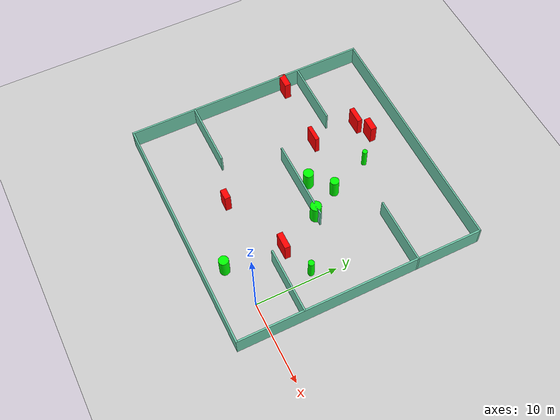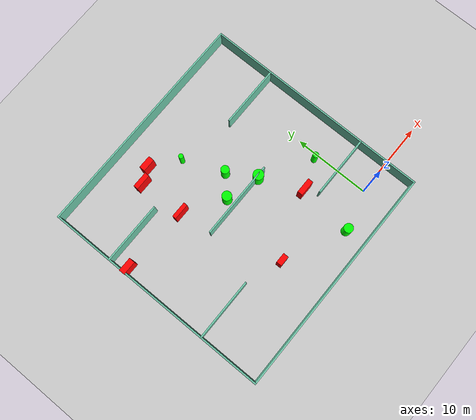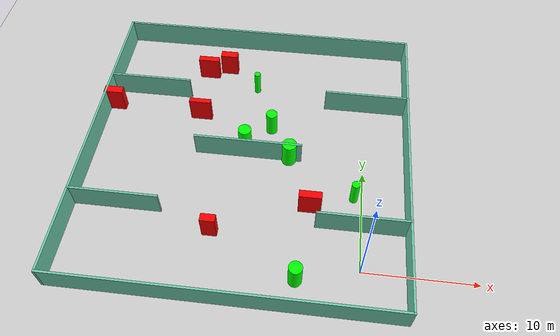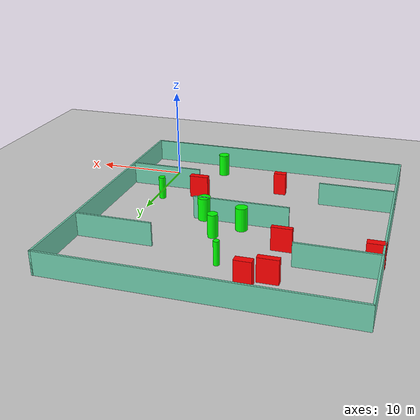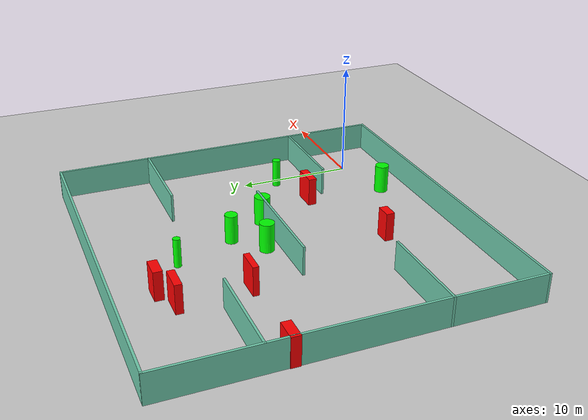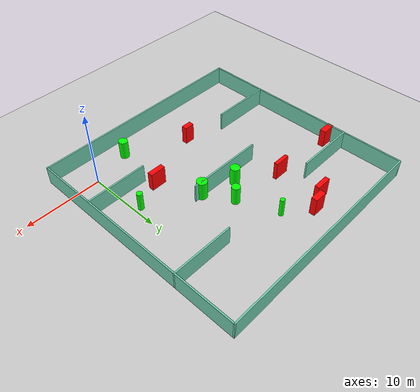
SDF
<sdf version="1.7">
 <world name="default">
  <light name="sun" type="directional">
   <pose>0 0 10 0 -0 0</pose>
   <diffuse>0.8 0.8 0.8 1</diffuse>
   <specular>0.2 0.2 0.2 1</specular>
   <attenuation>
    <range>1000</range>
    <constant>0.9</constant>
    <linear>0.01</linear>
    <quadratic>0.001</quadratic>
   </attenuation>
   <direction>-0.5 0.1 -0.9</direction>
   <spot><inner_angle>0</inner_angle><outer_angle>0</outer_angle><falloff>0</falloff></spot>
  </light>
  <model name="ground_plane">
   <static>1</static>
   <link name="link">
    <collision name="collision">
     <geometry><plane><normal>0 0 1</normal><size>100 100</size></plane></geometry>
     <surface>
      <contact><collide_bitmask>65535</collide_bitmask></contact>
      <friction><ode><mu>100</mu><mu2>50</mu2></ode></friction>
     </surface>
    </collision>
    <visual name="visual">
     <cast_shadows>0</cast_shadows>
     <geometry><plane><normal>0 0 1</normal><size>100 100</size></plane></geometry>
     <material>
      <script><uri>file://media/materials/scripts/gazebo.material</uri><name>Gazebo/Grey</name></script>
     </material>
    </visual>
   </link>
  </model>
  <gravity>0 0 -9.8</gravity>
  <magnetic_field>6e-06 2.3e-05 -4.2e-05</magnetic_field>
  <atmosphere type="adiabatic"/>
  <physics type="ode">
   <max_step_size>0.001</max_step_size>
   <real_time_factor>1</real_time_factor>
   <real_time_update_rate>1000</real_time_update_rate>
  </physics>
  <scene><ambient>0.4 0.4 0.4 1</ambient><background>0.7 0.7 0.7 1</background><shadows>1</shadows></scene>
  <spherical_coordinates>
   <surface_model>EARTH_WGS84</surface_model>
   <latitude_deg>0</latitude_deg>
   <longitude_deg>0</longitude_deg>
   <elevation>0</elevation>
   <heading_deg>0</heading_deg>
  </spherical_coordinates>
  <model name="my_base_walls">
   <link name="Wall_10">
    <collision name="Wall_10_Collision">
     <geometry><box><size>8.2 0.2 2.5</size></box></geometry>
     <pose>0 0 1.25 0 -0 0</pose>
    </collision>
    <visual name="Wall_10_Visual">
     <pose>0 0 1.25 0 -0 0</pose>
     <geometry><box><size>8.2 0.2 2.5</size></box></geometry>
     <material>
      <script><uri>file://media/materials/scripts/gazebo.material</uri><name>Gazebo/Grey</name></script>
      <ambient>0.435294 0.796078 0.67451 1</ambient>
     </material>
     <meta><layer>0</layer></meta>
    </visual>
    <pose>-11 -7 0 0 -0 0</pose>
   </link>
   <link name="Wall_12">
    <collision name="Wall_12_Collision">
     <geometry><box><size>8.2 0.2 2.5</size></box></geometry>
     <pose>0 0 1.25 0 -0 0</pose>
    </collision>
    <visual name="Wall_12_Visual">
     <pose>0 0 1.25 0 -0 0</pose>
     <geometry><box><size>8.2 0.2 2.5</size></box></geometry>
     <material>
      <script><uri>file://media/materials/scripts/gazebo.material</uri><name>Gazebo/Grey</name></script>
      <ambient>0.435294 0.796078 0.67451 1</ambient>
     </material>
     <meta><layer>0</layer></meta>
    </visual>
    <pose>-11 7 0 0 -0 0</pose>
   </link>
   <link name="Wall_14">
    <collision name="Wall_14_Collision">
     <geometry><box><size>8.2 0.2 2.5</size></box></geometry>
     <pose>0 0 1.25 0 -0 0</pose>
    </collision>
    <visual name="Wall_14_Visual">
     <pose>0 0 1.25 0 -0 0</pose>
     <geometry><box><size>8.2 0.2 2.5</size></box></geometry>
     <material>
      <script><uri>file://media/materials/scripts/gazebo.material</uri><name>Gazebo/Grey</name></script>
      <ambient>0.435294 0.796078 0.67451 1</ambient>
     </material>
     <meta><layer>0</layer></meta>
    </visual>
    <pose>11 7 0 0 -0 3.14159</pose>
   </link>
   <link name="Wall_16">
    <collision name="Wall_16_Collision">
     <geometry><box><size>10.2 0.2 2.5</size></box></geometry>
     <pose>0 0 1.25 0 -0 0</pose>
    </collision>
    <visual name="Wall_16_Visual">
     <pose>0 0 1.25 0 -0 0</pose>
     <geometry><box><size>10.2 0.2 2.5</size></box></geometry>
     <material>
      <script><uri>file://media/materials/scripts/gazebo.material</uri><name>Gazebo/Grey</name></script>
      <ambient>0.435294 0.796078 0.67451 1</ambient>
     </material>
     <meta><layer>0</layer></meta>
    </visual>
    <pose>0 0 0 0 -0 3.14159</pose>
   </link>
   <link name="Wall_2">
    <collision name="Wall_2_Collision">
     <geometry><box><size>30.2 0.2 2.5</size></box></geometry>
     <pose>0 0 1.25 0 -0 0</pose>
    </collision>
    <visual name="Wall_2_Visual">
     <pose>0 0 1.25 0 -0 0</pose>
     <geometry><box><size>30.2 0.2 2.5</size></box></geometry>
     <material>
      <script><uri>file://media/materials/scripts/gazebo.material</uri><name>Gazebo/Grey</name></script>
      <ambient>0.435294 0.796078 0.67451 1</ambient>
     </material>
     <meta><layer>0</layer></meta>
    </visual>
    <pose>0 -15 0 0 -0 3.14159</pose>
   </link>
   <link name="Wall_3">
    <collision name="Wall_3_Collision">
     <geometry><box><size>30.2 0.2 2.5</size></box></geometry>
     <pose>0 0 1.25 0 -0 0</pose>
    </collision>
    <visual name="Wall_3_Visual">
     <pose>0 0 1.25 0 -0 0</pose>
     <geometry><box><size>30.2 0.2 2.5</size></box></geometry>
     <material>
      <script><uri>file://media/materials/scripts/gazebo.material</uri><name>Gazebo/Grey</name></script>
      <ambient>0.435294 0.796078 0.67451 1</ambient>
     </material>
     <meta><layer>0</layer></meta>
    </visual>
    <pose>-15 0 0 0 -0 1.5708</pose>
   </link>
   <link name="Wall_4">
    <collision name="Wall_4_Collision">
     <geometry><box><size>30.2 0.2 2.5</size></box></geometry>
     <pose>0 0 1.25 0 -0 0</pose>
    </collision>
    <visual name="Wall_4_Visual">
     <pose>0 0 1.25 0 -0 0</pose>
     <geometry><box><size>30.2 0.2 2.5</size></box></geometry>
     <material>
      <script><uri>file://media/materials/scripts/gazebo.material</uri><name>Gazebo/Grey</name></script>
      <ambient>0.435294 0.796078 0.67451 1</ambient>
     </material>
     <meta><layer>0</layer></meta>
    </visual>
    <pose>0 15 0 0 -0 0</pose>
   </link>
   <link name="Wall_6">
    <collision name="Wall_6_Collision">
     <geometry><box><size>30.2 0.2 2.5</size></box></geometry>
     <pose>0 0 1.25 0 -0 0</pose>
    </collision>
    <visual name="Wall_6_Visual">
     <pose>0 0 1.25 0 -0 0</pose>
     <geometry><box><size>30.2 0.2 2.5</size></box></geometry>
     <material>
      <script><uri>file://media/materials/scripts/gazebo.material</uri><name>Gazebo/Grey</name></script>
      <ambient>0.435294 0.796078 0.67451 1</ambient>
     </material>
     <meta><layer>0</layer></meta>
    </visual>
    <pose>15 0 0 0 -0 1.5708</pose>
   </link>
   <link name="Wall_8">
    <collision name="Wall_8_Collision">
     <geometry><box><size>8.2 0.2 2.5</size></box></geometry>
     <pose>0 0 1.25 0 -0 0</pose>
    </collision>
    <visual name="Wall_8_Visual">
     <pose>0 0 1.25 0 -0 0</pose>
     <geometry><box><size>8.2 0.2 2.5</size></box></geometry>
     <material>
      <script><uri>file://media/materials/scripts/gazebo.material</uri><name>Gazebo/Grey</name></script>
      <ambient>0.435294 0.796078 0.67451 1</ambient>
     </material>
     <meta><layer>0</layer></meta>
    </visual>
    <pose>11 -7 0 0 -0 3.14159</pose>
   </link>
   <static>1</static>
   <pose>-11 11 0 0 -0 0</pose>
  </model>
  <model name="cylinder1">
   <static>1</static>
   <link name="link">
    <inertial>
     <mass>1</mass>
     <inertia><ixx>0.5</ixx><ixy>0</ixy><ixz>0</ixz><iyy>0.5</iyy><iyz>0</iyz><izz>1</izz></inertia>
    </inertial>
    <collision name="collision">
     <geometry><cylinder><radius>0.5382788411007053</radius><length>2.5</length></cylinder></geometry>
    </collision>
    <visual name="visual">
     <geometry><cylinder><radius>0.5382788411007053</radius><length>2.5</length></cylinder></geometry>
     <material>
      <ambient>0 1 0 1</ambient>
      <diffuse>0 1 0 1</diffuse>
      <specular>0.1 0.1 0.1 1</specular>
      <emissive>0 0 0 0</emissive>
     </material>
    </visual>
   </link>
   <pose>-9.120426198106536 14.45594075580248 1.25 0 0 0</pose>
  </model>
  <model name="cylinder2">
   <static>1</static>
   <link name="link">
    <inertial>
     <mass>1</mass>
     <inertia><ixx>0.5</ixx><ixy>0</ixy><ixz>0</ixz><iyy>0.5</iyy><iyz>0</iyz><izz>1</izz></inertia>
    </inertial>
    <collision name="collision">
     <geometry><cylinder><radius>0.6256863201920229</radius><length>2.5</length></cylinder></geometry>
    </collision>
    <visual name="visual">
     <geometry><cylinder><radius>0.6256863201920229</radius><length>2.5</length></cylinder></geometry>
     <material>
      <ambient>0 1 0 1</ambient>
      <diffuse>0 1 0 1</diffuse>
      <specular>0.1 0.1 0.1 1</specular>
      <emissive>0 0 0 0</emissive>
     </material>
    </visual>
   </link>
   <pose>-11.461143516553138 12.236099949406121 1.25 0 0 0</pose>
  </model>
  <model name="cylinder3">
   <static>1</static>
   <link name="link">
    <inertial>
     <mass>1</mass>
     <inertia><ixx>0.5</ixx><ixy>0</ixy><ixz>0</ixz><iyy>0.5</iyy><iyz>0</iyz><izz>1</izz></inertia>
    </inertial>
    <collision name="collision">
     <geometry><cylinder><radius>0.36811076290451145</radius><length>2.5</length></cylinder></geometry>
    </collision>
    <visual name="visual">
     <geometry><cylinder><radius>0.36811076290451145</radius><length>2.5</length></cylinder></geometry>
     <material>
      <ambient>0 1 0 1</ambient>
      <diffuse>0 1 0 1</diffuse>
      <specular>0.1 0.1 0.1 1</specular>
      <emissive>0 0 0 0</emissive>
     </material>
    </visual>
   </link>
   <pose>-0.7681368030518207 7.184135179451314 1.25 0 0 0</pose>
  </model>
  <model name="cylinder4">
   <static>1</static>
   <link name="link">
    <inertial>
     <mass>1</mass>
     <inertia><ixx>0.5</ixx><ixy>0</ixy><ixz>0</ixz><iyy>0.5</iyy><iyz>0</iyz><izz>1</izz></inertia>
    </inertial>
    <collision name="collision">
     <geometry><cylinder><radius>0.5934235475024068</radius><length>2.5</length></cylinder></geometry>
    </collision>
    <visual name="visual">
     <geometry><cylinder><radius>0.5934235475024068</radius><length>2.5</length></cylinder></geometry>
     <material>
      <ambient>0 1 0 1</ambient>
      <diffuse>0 1 0 1</diffuse>
      <specular>0.1 0.1 0.1 1</specular>
      <emissive>0 0 0 0</emissive>
     </material>
    </visual>
   </link>
   <pose>-5.35202798410427 -1.3197008622022053 1.25 0 0 0</pose>
  </model>
  <model name="cylinder5">
   <static>1</static>
   <link name="link">
    <inertial>
     <mass>1</mass>
     <inertia><ixx>0.5</ixx><ixy>0</ixy><ixz>0</ixz><iyy>0.5</iyy><iyz>0</iyz><izz>1</izz></inertia>
    </inertial>
    <collision name="collision">
     <geometry><cylinder><radius>0.6822011355347765</radius><length>2.5</length></cylinder></geometry>
    </collision>
    <visual name="visual">
     <geometry><cylinder><radius>0.6822011355347765</radius><length>2.5</length></cylinder></geometry>
     <material>
      <ambient>0 1 0 1</ambient>
      <diffuse>0 1 0 1</diffuse>
      <specular>0.1 0.1 0.1 1</specular>
      <emissive>0 0 0 0</emissive>
     </material>
    </visual>
   </link>
   <pose>-7.058565037805394 10.967591891168716 1.25 0 0 0</pose>
  </model>
  <model name="cylinder6">
   <static>1</static>
   <link name="link">
    <inertial>
     <mass>1</mass>
     <inertia><ixx>0.5</ixx><ixy>0</ixy><ixz>0</ixz><iyy>0.5</iyy><iyz>0</iyz><izz>1</izz></inertia>
    </inertial>
    <collision name="collision">
     <geometry><cylinder><radius>0.30577229726128646</radius><length>2.5</length></cylinder></geometry>
    </collision>
    <visual name="visual">
     <geometry><cylinder><radius>0.30577229726128646</radius><length>2.5</length></cylinder></geometry>
     <material>
      <ambient>0 1 0 1</ambient>
      <diffuse>0 1 0 1</diffuse>
      <specular>0.1 0.1 0.1 1</specular>
      <emissive>0 0 0 0</emissive>
     </material>
    </visual>
   </link>
   <pose>-11.208532556529253 19.62048646341039 1.25 0 0 0</pose>
  </model>
  <model name="box1">
   <static>1</static>
   <link name="link">
    <inertial>
     <mass>1</mass>
     <inertia><ixx>0.083</ixx><ixy>0</ixy><ixz>0</ixz><iyy>0.083</iyy><iyz>0</iyz><izz>0.083</izz></inertia>
    </inertial>
    <collision name="collision">
     <geometry><box><size>2.0829677348872453 0.6170729596091273 2.5</size></box></geometry>
    </collision>
    <visual name="visual">
     <geometry><box><size>2.0829677348872453 0.6170729596091273 2.5</size></box></geometry>
     <material>
      <ambient>1 0 0 1</ambient>
      <diffuse>1 0 0 1</diffuse>
      <specular>0.1 0.1 0.1 1</specular>
      <emissive>0 0 0 0</emissive>
     </material>
    </visual>
    <sensor name="my_contact" type="contact">
     <contact><collision>box_collision</collision><topic>__default_topic__</topic></contact>
    </sensor>
   </link>
   <pose>-16.51657382845504 21.27478575687577 1.25 0 0 0</pose>
  </model>
  <model name="box2">
   <static>1</static>
   <link name="link">
    <inertial>
     <mass>1</mass>
     <inertia><ixx>0.083</ixx><ixy>0</ixy><ixz>0</ixz><iyy>0.083</iyy><iyz>0</iyz><izz>0.083</izz></inertia>
    </inertial>
    <collision name="collision">
     <geometry><box><size>1.332797070056296 0.7282618571013703 2.5</size></box></geometry>
    </collision>
    <visual name="visual">
     <geometry><box><size>1.332797070056296 0.7282618571013703 2.5</size></box></geometry>
     <material>
      <ambient>1 0 0 1</ambient>
      <diffuse>1 0 0 1</diffuse>
      <specular>0.1 0.1 0.1 1</specular>
      <emissive>0 0 0 0</emissive>
     </material>
    </visual>
    <sensor name="my_contact" type="contact">
     <contact><collision>box_collision</collision><topic>__default_topic__</topic></contact>
    </sensor>
   </link>
   <pose>-13.176327750718448 2.378472901481322 1.25 0 0 0</pose>
  </model>
  <model name="box3">
   <static>1</static>
   <link name="link">
    <inertial>
     <mass>1</mass>
     <inertia><ixx>0.083</ixx><ixy>0</ixy><ixz>0</ixz><iyy>0.083</iyy><iyz>0</iyz><izz>0.083</izz></inertia>
    </inertial>
    <collision name="collision">
     <geometry><box><size>1.821770835204998 0.7838915784734413 2.5</size></box></geometry>
    </collision>
    <visual name="visual">
     <geometry><box><size>1.821770835204998 0.7838915784734413 2.5</size></box></geometry>
     <material>
      <ambient>1 0 0 1</ambient>
      <diffuse>1 0 0 1</diffuse>
      <specular>0.1 0.1 0.1 1</specular>
      <emissive>0 0 0 0</emissive>
     </material>
    </visual>
    <sensor name="my_contact" type="contact">
     <contact><collision>box_collision</collision><topic>__default_topic__</topic></contact>
    </sensor>
   </link>
   <pose>-25.25663706333386 15.87468136659373 1.25 0 0 0</pose>
  </model>
  <model name="box4">
   <static>1</static>
   <link name="link">
    <inertial>
     <mass>1</mass>
     <inertia><ixx>0.083</ixx><ixy>0</ixy><ixz>0</ixz><iyy>0.083</iyy><iyz>0</iyz><izz>0.083</izz></inertia>
    </inertial>
    <collision name="collision">
     <geometry><box><size>2.099902402763935 0.5010211292389407 2.5</size></box></geometry>
    </collision>
    <visual name="visual">
     <geometry><box><size>2.099902402763935 0.5010211292389407 2.5</size></box></geometry>
     <material>
      <ambient>1 0 0 1</ambient>
      <diffuse>1 0 0 1</diffuse>
      <specular>0.1 0.1 0.1 1</specular>
      <emissive>0 0 0 0</emissive>
     </material>
    </visual>
    <sensor name="my_contact" type="contact">
     <contact><collision>box_collision</collision><topic>__default_topic__</topic></contact>
    </sensor>
   </link>
   <pose>-16.359554633510903 15.382330424007701 1.25 0 0 0</pose>
  </model>
  <model name="box5">
   <static>1</static>
   <link name="link">
    <inertial>
     <mass>1</mass>
     <inertia><ixx>0.083</ixx><ixy>0</ixy><ixz>0</ixz><iyy>0.083</iyy><iyz>0</iyz><izz>0.083</izz></inertia>
    </inertial>
    <collision name="collision">
     <geometry><box><size>2.0574973182748044 0.699924649669661 2.5</size></box></geometry>
    </collision>
    <visual name="visual">
     <geometry><box><size>2.0574973182748044 0.699924649669661 2.5</size></box></geometry>
     <material>
      <ambient>1 0 0 1</ambient>
      <diffuse>1 0 0 1</diffuse>
      <specular>0.1 0.1 0.1 1</specular>
      <emissive>0 0 0 0</emissive>
     </material>
    </visual>
    <sensor name="my_contact" type="contact">
     <contact><collision>box_collision</collision><topic>__default_topic__</topic></contact>
    </sensor>
   </link>
   <pose>-4.680023738091897 5.7067440628474095 1.25 0 0 0</pose>
  </model>
  <model name="box6">
   <static>1</static>
   <link name="link">
    <inertial>
     <mass>1</mass>
     <inertia><ixx>0.083</ixx><ixy>0</ixy><ixz>0</ixz><iyy>0.083</iyy><iyz>0</iyz><izz>0.083</izz></inertia>
    </inertial>
    <collision name="collision">
     <geometry><box><size>1.7140736743478915 0.7596332286770364 2.5</size></box></geometry>
    </collision>
    <visual name="visual">
     <geometry><box><size>1.7140736743478915 0.7596332286770364 2.5</size></box></geometry>
     <material>
      <ambient>1 0 0 1</ambient>
      <diffuse>1 0 0 1</diffuse>
      <specular>0.1 0.1 0.1 1</specular>
      <emissive>0 0 0 0</emissive>
     </material>
    </visual>
    <sensor name="my_contact" type="contact">
     <contact><collision>box_collision</collision><topic>__default_topic__</topic></contact>
    </sensor>
   </link>
   <pose>-14.51555162969451 22.18422892109748 1.25 0 0 0</pose>
  </model>
 </world>
</sdf>
